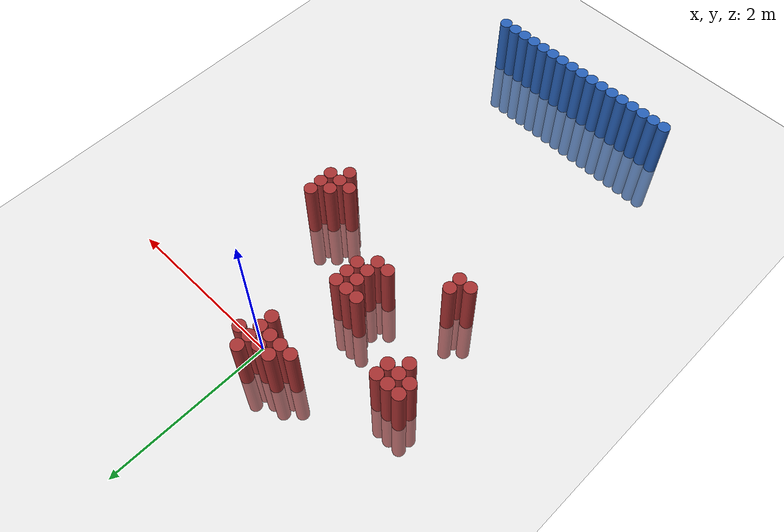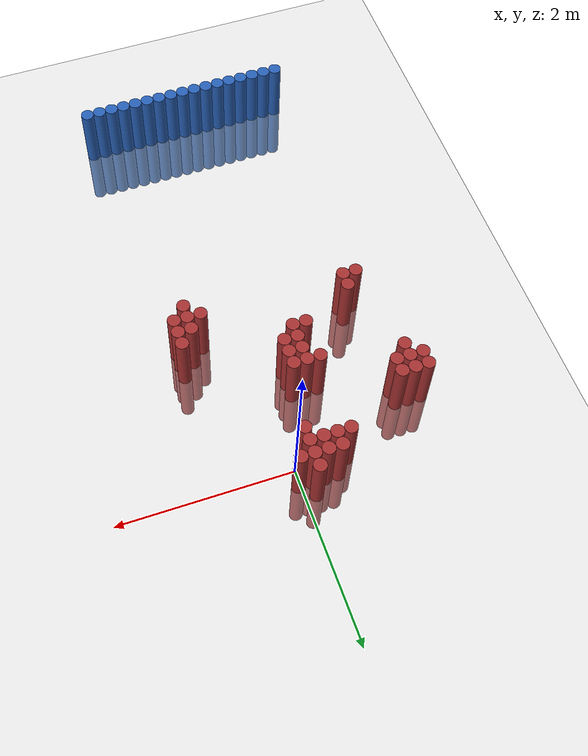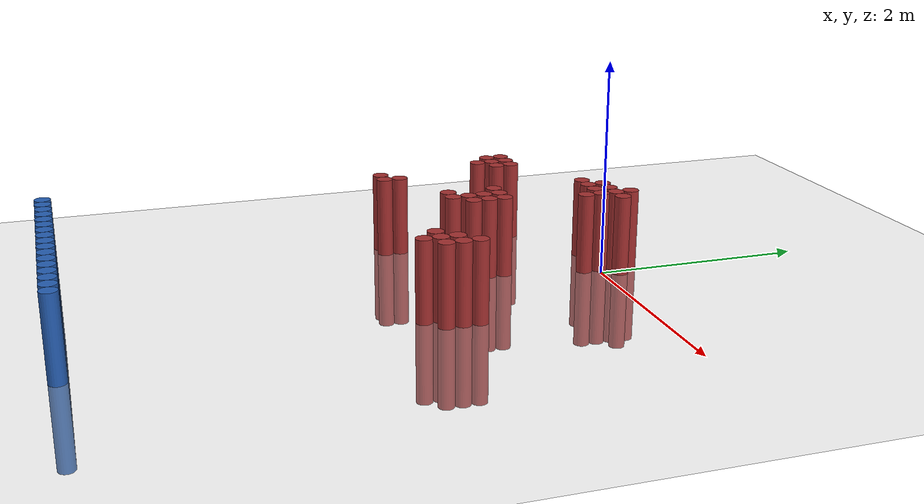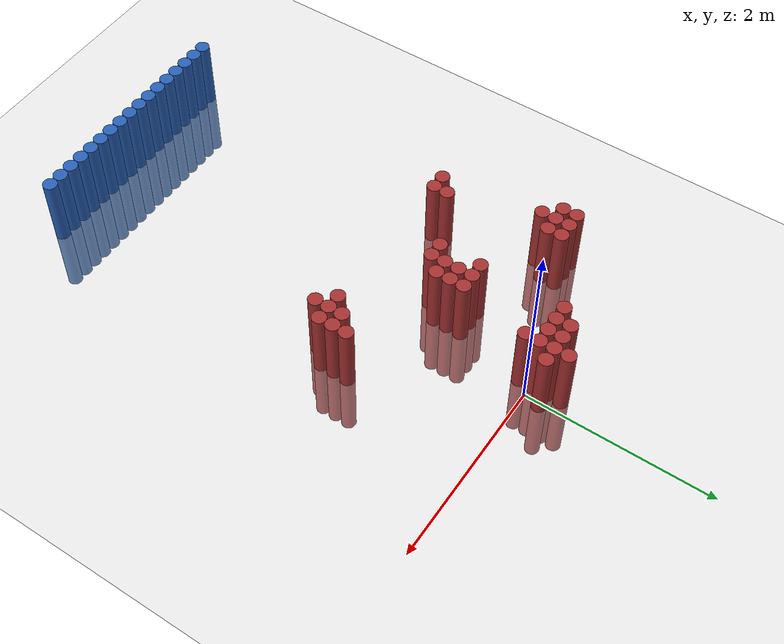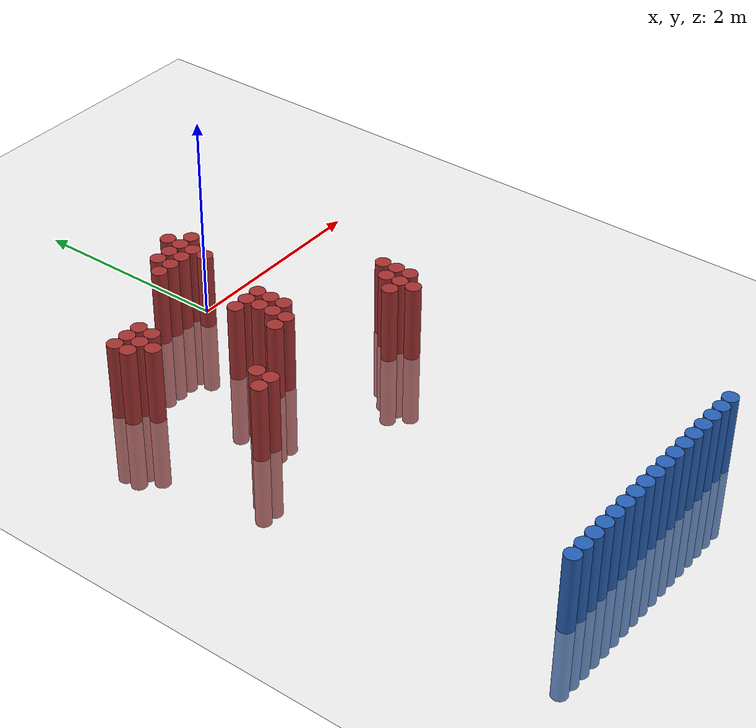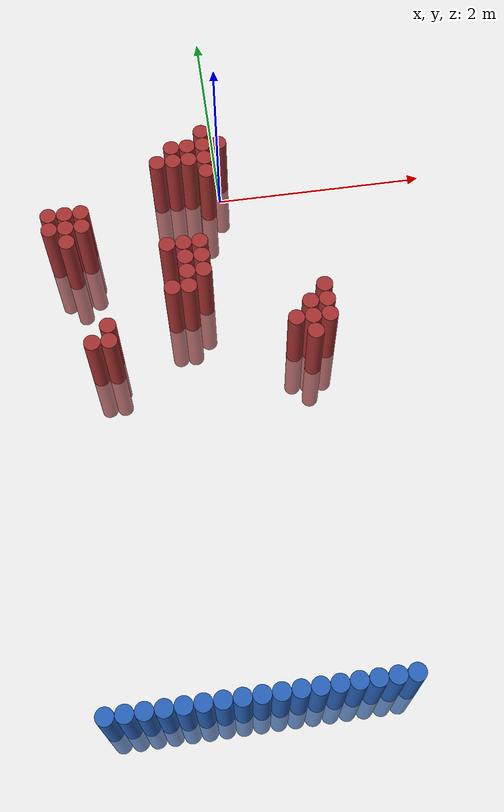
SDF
<sdf version="1.6">
 <world name="default">
  <model name="ground_plane">
   <static>1</static>
   <link name="link">
    <collision name="collision">
     <geometry><plane><normal>0 0 1</normal><size>100 100</size></plane></geometry>
     <surface><friction><ode><mu>100</mu><mu2>50</mu2></ode></friction></surface>
    </collision>
    <visual name="visual">
     <cast_shadows>0</cast_shadows>
     <geometry><plane><normal>0 0 1</normal><size>100 100</size></plane></geometry>
     <material>
      <script><uri>file://media/materials/scripts/gazebo.material</uri><name>Gazebo/Grey</name></script>
     </material>
    </visual>
   </link>
  </model>
  <model name="unit_cylinder_20">
   <static>1</static>
   <pose>0.925000 -4.925000 0.000000 0.000000 0.000000 0.000000</pose>
   <link name="link">
    <inertial>
     <mass>1</mass>
     <inertia><ixx>0.145833</ixx><ixy>0</ixy><ixz>0</ixz><iyy>0.145833</iyy><iyz>0</iyz><izz>0.125</izz></inertia>
    </inertial>
    <collision name="collision">
     <geometry><cylinder><radius>0.075000</radius><length>1.5</length></cylinder></geometry>
    </collision>
    <visual name="visual">
     <geometry><cylinder><radius>0.075000</radius><length>1.5</length></cylinder></geometry>
     <material>
      <ambient>0.152000 0.379000 0.720000 1</ambient>
      <diffuse>0.152000 0.379000 0.720000 1</diffuse>
     </material>
     <material>
      <script><name>Gazebo/Grey</name><uri>file://media/materials/scripts/gazebo.material</uri></script>
     </material>
    </visual>
   </link>
  </model>
  <model name="unit_cylinder_21">
   <static>1</static>
   <pose>0.775000 -4.925000 0.000000 0.000000 0.000000 0.000000</pose>
   <link name="link">
    <inertial>
     <mass>1</mass>
     <inertia><ixx>0.145833</ixx><ixy>0</ixy><ixz>0</ixz><iyy>0.145833</iyy><iyz>0</iyz><izz>0.125</izz></inertia>
    </inertial>
    <collision name="collision">
     <geometry><cylinder><radius>0.075000</radius><length>1.5</length></cylinder></geometry>
    </collision>
    <visual name="visual">
     <geometry><cylinder><radius>0.075000</radius><length>1.5</length></cylinder></geometry>
     <material>
      <ambient>0.152000 0.379000 0.720000 1</ambient>
      <diffuse>0.152000 0.379000 0.720000 1</diffuse>
     </material>
     <material>
      <script><name>Gazebo/Grey</name><uri>file://media/materials/scripts/gazebo.material</uri></script>
     </material>
    </visual>
   </link>
  </model>
  <model name="unit_cylinder_22">
   <static>1</static>
   <pose>0.625000 -4.925000 0.000000 0.000000 0.000000 0.000000</pose>
   <link name="link">
    <inertial>
     <mass>1</mass>
     <inertia><ixx>0.145833</ixx><ixy>0</ixy><ixz>0</ixz><iyy>0.145833</iyy><iyz>0</iyz><izz>0.125</izz></inertia>
    </inertial>
    <collision name="collision">
     <geometry><cylinder><radius>0.075000</radius><length>1.5</length></cylinder></geometry>
    </collision>
    <visual name="visual">
     <geometry><cylinder><radius>0.075000</radius><length>1.5</length></cylinder></geometry>
     <material>
      <ambient>0.152000 0.379000 0.720000 1</ambient>
      <diffuse>0.152000 0.379000 0.720000 1</diffuse>
     </material>
     <material>
      <script><name>Gazebo/Grey</name><uri>file://media/materials/scripts/gazebo.material</uri></script>
     </material>
    </visual>
   </link>
  </model>
  <model name="unit_cylinder_23">
   <static>1</static>
   <pose>0.475000 -4.925000 0.000000 0.000000 0.000000 0.000000</pose>
   <link name="link">
    <inertial>
     <mass>1</mass>
     <inertia><ixx>0.145833</ixx><ixy>0</ixy><ixz>0</ixz><iyy>0.145833</iyy><iyz>0</iyz><izz>0.125</izz></inertia>
    </inertial>
    <collision name="collision">
     <geometry><cylinder><radius>0.075000</radius><length>1.5</length></cylinder></geometry>
    </collision>
    <visual name="visual">
     <geometry><cylinder><radius>0.075000</radius><length>1.5</length></cylinder></geometry>
     <material>
      <ambient>0.152000 0.379000 0.720000 1</ambient>
      <diffuse>0.152000 0.379000 0.720000 1</diffuse>
     </material>
     <material>
      <script><name>Gazebo/Grey</name><uri>file://media/materials/scripts/gazebo.material</uri></script>
     </material>
    </visual>
   </link>
  </model>
  <model name="unit_cylinder_24">
   <static>1</static>
   <pose>0.325000 -4.925000 0.000000 0.000000 0.000000 0.000000</pose>
   <link name="link">
    <inertial>
     <mass>1</mass>
     <inertia><ixx>0.145833</ixx><ixy>0</ixy><ixz>0</ixz><iyy>0.145833</iyy><iyz>0</iyz><izz>0.125</izz></inertia>
    </inertial>
    <collision name="collision">
     <geometry><cylinder><radius>0.075000</radius><length>1.5</length></cylinder></geometry>
    </collision>
    <visual name="visual">
     <geometry><cylinder><radius>0.075000</radius><length>1.5</length></cylinder></geometry>
     <material>
      <ambient>0.152000 0.379000 0.720000 1</ambient>
      <diffuse>0.152000 0.379000 0.720000 1</diffuse>
     </material>
     <material>
      <script><name>Gazebo/Grey</name><uri>file://media/materials/scripts/gazebo.material</uri></script>
     </material>
    </visual>
   </link>
  </model>
  <model name="unit_cylinder_25">
   <static>1</static>
   <pose>0.175000 -4.925000 0.000000 0.000000 0.000000 0.000000</pose>
   <link name="link">
    <inertial>
     <mass>1</mass>
     <inertia><ixx>0.145833</ixx><ixy>0</ixy><ixz>0</ixz><iyy>0.145833</iyy><iyz>0</iyz><izz>0.125</izz></inertia>
    </inertial>
    <collision name="collision">
     <geometry><cylinder><radius>0.075000</radius><length>1.5</length></cylinder></geometry>
    </collision>
    <visual name="visual">
     <geometry><cylinder><radius>0.075000</radius><length>1.5</length></cylinder></geometry>
     <material>
      <ambient>0.152000 0.379000 0.720000 1</ambient>
      <diffuse>0.152000 0.379000 0.720000 1</diffuse>
     </material>
     <material>
      <script><name>Gazebo/Grey</name><uri>file://media/materials/scripts/gazebo.material</uri></script>
     </material>
    </visual>
   </link>
  </model>
  <model name="unit_cylinder_26">
   <static>1</static>
   <pose>0.025000 -4.925000 0.000000 0.000000 0.000000 0.000000</pose>
   <link name="link">
    <inertial>
     <mass>1</mass>
     <inertia><ixx>0.145833</ixx><ixy>0</ixy><ixz>0</ixz><iyy>0.145833</iyy><iyz>0</iyz><izz>0.125</izz></inertia>
    </inertial>
    <collision name="collision">
     <geometry><cylinder><radius>0.075000</radius><length>1.5</length></cylinder></geometry>
    </collision>
    <visual name="visual">
     <geometry><cylinder><radius>0.075000</radius><length>1.5</length></cylinder></geometry>
     <material>
      <ambient>0.152000 0.379000 0.720000 1</ambient>
      <diffuse>0.152000 0.379000 0.720000 1</diffuse>
     </material>
     <material>
      <script><name>Gazebo/Grey</name><uri>file://media/materials/scripts/gazebo.material</uri></script>
     </material>
    </visual>
   </link>
  </model>
  <model name="unit_cylinder_27">
   <static>1</static>
   <pose>-0.125000 -4.925000 0.000000 0.000000 0.000000 0.000000</pose>
   <link name="link">
    <inertial>
     <mass>1</mass>
     <inertia><ixx>0.145833</ixx><ixy>0</ixy><ixz>0</ixz><iyy>0.145833</iyy><iyz>0</iyz><izz>0.125</izz></inertia>
    </inertial>
    <collision name="collision">
     <geometry><cylinder><radius>0.075000</radius><length>1.5</length></cylinder></geometry>
    </collision>
    <visual name="visual">
     <geometry><cylinder><radius>0.075000</radius><length>1.5</length></cylinder></geometry>
     <material>
      <ambient>0.152000 0.379000 0.720000 1</ambient>
      <diffuse>0.152000 0.379000 0.720000 1</diffuse>
     </material>
     <material>
      <script><name>Gazebo/Grey</name><uri>file://media/materials/scripts/gazebo.material</uri></script>
     </material>
    </visual>
   </link>
  </model>
  <model name="unit_cylinder_28">
   <static>1</static>
   <pose>-0.275000 -4.925000 0.000000 0.000000 0.000000 0.000000</pose>
   <link name="link">
    <inertial>
     <mass>1</mass>
     <inertia><ixx>0.145833</ixx><ixy>0</ixy><ixz>0</ixz><iyy>0.145833</iyy><iyz>0</iyz><izz>0.125</izz></inertia>
    </inertial>
    <collision name="collision">
     <geometry><cylinder><radius>0.075000</radius><length>1.5</length></cylinder></geometry>
    </collision>
    <visual name="visual">
     <geometry><cylinder><radius>0.075000</radius><length>1.5</length></cylinder></geometry>
     <material>
      <ambient>0.152000 0.379000 0.720000 1</ambient>
      <diffuse>0.152000 0.379000 0.720000 1</diffuse>
     </material>
     <material>
      <script><name>Gazebo/Grey</name><uri>file://media/materials/scripts/gazebo.material</uri></script>
     </material>
    </visual>
   </link>
  </model>
  <model name="unit_cylinder_29">
   <static>1</static>
   <pose>-0.425000 -4.925000 0.000000 0.000000 0.000000 0.000000</pose>
   <link name="link">
    <inertial>
     <mass>1</mass>
     <inertia><ixx>0.145833</ixx><ixy>0</ixy><ixz>0</ixz><iyy>0.145833</iyy><iyz>0</iyz><izz>0.125</izz></inertia>
    </inertial>
    <collision name="collision">
     <geometry><cylinder><radius>0.075000</radius><length>1.5</length></cylinder></geometry>
    </collision>
    <visual name="visual">
     <geometry><cylinder><radius>0.075000</radius><length>1.5</length></cylinder></geometry>
     <material>
      <ambient>0.152000 0.379000 0.720000 1</ambient>
      <diffuse>0.152000 0.379000 0.720000 1</diffuse>
     </material>
     <material>
      <script><name>Gazebo/Grey</name><uri>file://media/materials/scripts/gazebo.material</uri></script>
     </material>
    </visual>
   </link>
  </model>
  <model name="unit_cylinder_30">
   <static>1</static>
   <pose>-0.575000 -4.925000 0.000000 0.000000 0.000000 0.000000</pose>
   <link name="link">
    <inertial>
     <mass>1</mass>
     <inertia><ixx>0.145833</ixx><ixy>0</ixy><ixz>0</ixz><iyy>0.145833</iyy><iyz>0</iyz><izz>0.125</izz></inertia>
    </inertial>
    <collision name="collision">
     <geometry><cylinder><radius>0.075000</radius><length>1.5</length></cylinder></geometry>
    </collision>
    <visual name="visual">
     <geometry><cylinder><radius>0.075000</radius><length>1.5</length></cylinder></geometry>
     <material>
      <ambient>0.152000 0.379000 0.720000 1</ambient>
      <diffuse>0.152000 0.379000 0.720000 1</diffuse>
     </material>
     <material>
      <script><name>Gazebo/Grey</name><uri>file://media/materials/scripts/gazebo.material</uri></script>
     </material>
    </visual>
   </link>
  </model>
  <model name="unit_cylinder_31">
   <static>1</static>
   <pose>-0.725000 -4.925000 0.000000 0.000000 0.000000 0.000000</pose>
   <link name="link">
    <inertial>
     <mass>1</mass>
     <inertia><ixx>0.145833</ixx><ixy>0</ixy><ixz>0</ixz><iyy>0.145833</iyy><iyz>0</iyz><izz>0.125</izz></inertia>
    </inertial>
    <collision name="collision">
     <geometry><cylinder><radius>0.075000</radius><length>1.5</length></cylinder></geometry>
    </collision>
    <visual name="visual">
     <geometry><cylinder><radius>0.075000</radius><length>1.5</length></cylinder></geometry>
     <material>
      <ambient>0.152000 0.379000 0.720000 1</ambient>
      <diffuse>0.152000 0.379000 0.720000 1</diffuse>
     </material>
     <material>
      <script><name>Gazebo/Grey</name><uri>file://media/materials/scripts/gazebo.material</uri></script>
     </material>
    </visual>
   </link>
  </model>
  <model name="unit_cylinder_32">
   <static>1</static>
   <pose>-0.875000 -4.925000 0.000000 0.000000 0.000000 0.000000</pose>
   <link name="link">
    <inertial>
     <mass>1</mass>
     <inertia><ixx>0.145833</ixx><ixy>0</ixy><ixz>0</ixz><iyy>0.145833</iyy><iyz>0</iyz><izz>0.125</izz></inertia>
    </inertial>
    <collision name="collision">
     <geometry><cylinder><radius>0.075000</radius><length>1.5</length></cylinder></geometry>
    </collision>
    <visual name="visual">
     <geometry><cylinder><radius>0.075000</radius><length>1.5</length></cylinder></geometry>
     <material>
      <ambient>0.152000 0.379000 0.720000 1</ambient>
      <diffuse>0.152000 0.379000 0.720000 1</diffuse>
     </material>
     <material>
      <script><name>Gazebo/Grey</name><uri>file://media/materials/scripts/gazebo.material</uri></script>
     </material>
    </visual>
   </link>
  </model>
  <model name="unit_cylinder_33">
   <static>1</static>
   <pose>-1.025000 -4.925000 0.000000 0.000000 0.000000 0.000000</pose>
   <link name="link">
    <inertial>
     <mass>1</mass>
     <inertia><ixx>0.145833</ixx><ixy>0</ixy><ixz>0</ixz><iyy>0.145833</iyy><iyz>0</iyz><izz>0.125</izz></inertia>
    </inertial>
    <collision name="collision">
     <geometry><cylinder><radius>0.075000</radius><length>1.5</length></cylinder></geometry>
    </collision>
    <visual name="visual">
     <geometry><cylinder><radius>0.075000</radius><length>1.5</length></cylinder></geometry>
     <material>
      <ambient>0.152000 0.379000 0.720000 1</ambient>
      <diffuse>0.152000 0.379000 0.720000 1</diffuse>
     </material>
     <material>
      <script><name>Gazebo/Grey</name><uri>file://media/materials/scripts/gazebo.material</uri></script>
     </material>
    </visual>
   </link>
  </model>
  <model name="unit_cylinder_34">
   <static>1</static>
   <pose>-1.175000 -4.925000 0.000000 0.000000 0.000000 0.000000</pose>
   <link name="link">
    <inertial>
     <mass>1</mass>
     <inertia><ixx>0.145833</ixx><ixy>0</ixy><ixz>0</ixz><iyy>0.145833</iyy><iyz>0</iyz><izz>0.125</izz></inertia>
    </inertial>
    <collision name="collision">
     <geometry><cylinder><radius>0.075000</radius><length>1.5</length></cylinder></geometry>
    </collision>
    <visual name="visual">
     <geometry><cylinder><radius>0.075000</radius><length>1.5</length></cylinder></geometry>
     <material>
      <ambient>0.152000 0.379000 0.720000 1</ambient>
      <diffuse>0.152000 0.379000 0.720000 1</diffuse>
     </material>
     <material>
      <script><name>Gazebo/Grey</name><uri>file://media/materials/scripts/gazebo.material</uri></script>
     </material>
    </visual>
   </link>
  </model>
  <model name="unit_cylinder_35">
   <static>1</static>
   <pose>-1.325000 -4.925000 0.000000 0.000000 0.000000 0.000000</pose>
   <link name="link">
    <inertial>
     <mass>1</mass>
     <inertia><ixx>0.145833</ixx><ixy>0</ixy><ixz>0</ixz><iyy>0.145833</iyy><iyz>0</iyz><izz>0.125</izz></inertia>
    </inertial>
    <collision name="collision">
     <geometry><cylinder><radius>0.075000</radius><length>1.5</length></cylinder></geometry>
    </collision>
    <visual name="visual">
     <geometry><cylinder><radius>0.075000</radius><length>1.5</length></cylinder></geometry>
     <material>
      <ambient>0.152000 0.379000 0.720000 1</ambient>
      <diffuse>0.152000 0.379000 0.720000 1</diffuse>
     </material>
     <material>
      <script><name>Gazebo/Grey</name><uri>file://media/materials/scripts/gazebo.material</uri></script>
     </material>
    </visual>
   </link>
  </model>
  <model name="unit_cylinder_36">
   <static>1</static>
   <pose>-1.475000 -4.925000 0.000000 0.000000 0.000000 0.000000</pose>
   <link name="link">
    <inertial>
     <mass>1</mass>
     <inertia><ixx>0.145833</ixx><ixy>0</ixy><ixz>0</ixz><iyy>0.145833</iyy><iyz>0</iyz><izz>0.125</izz></inertia>
    </inertial>
    <collision name="collision">
     <geometry><cylinder><radius>0.075000</radius><length>1.5</length></cylinder></geometry>
    </collision>
    <visual name="visual">
     <geometry><cylinder><radius>0.075000</radius><length>1.5</length></cylinder></geometry>
     <material>
      <ambient>0.152000 0.379000 0.720000 1</ambient>
      <diffuse>0.152000 0.379000 0.720000 1</diffuse>
     </material>
     <material>
      <script><name>Gazebo/Grey</name><uri>file://media/materials/scripts/gazebo.material</uri></script>
     </material>
    </visual>
   </link>
  </model>
  <model name="unit_cylinder_344">
   <static>1</static>
   <pose>-1.625000 -0.575000 0.000000 0.000000 0.000000 0.000000</pose>
   <link name="link">
    <inertial>
     <mass>1</mass>
     <inertia><ixx>0.145833</ixx><ixy>0</ixy><ixz>0</ixz><iyy>0.145833</iyy><iyz>0</iyz><izz>0.125</izz></inertia>
    </inertial>
    <collision name="collision">
     <geometry><cylinder><radius>0.075000</radius><length>1.5</length></cylinder></geometry>
    </collision>
    <visual name="visual">
     <geometry><cylinder><radius>0.075000</radius><length>1.5</length></cylinder></geometry>
     <material>
      <ambient>0.648000 0.192000 0.192000 1</ambient>
      <diffuse>0.648000 0.192000 0.192000 1</diffuse>
     </material>
     <material>
      <script><name>Gazebo/Grey</name><uri>file://media/materials/scripts/gazebo.material</uri></script>
     </material>
    </visual>
   </link>
  </model>
  <model name="unit_cylinder_345">
   <static>1</static>
   <pose>-1.625000 -0.425000 0.000000 0.000000 0.000000 0.000000</pose>
   <link name="link">
    <inertial>
     <mass>1</mass>
     <inertia><ixx>0.145833</ixx><ixy>0</ixy><ixz>0</ixz><iyy>0.145833</iyy><iyz>0</iyz><izz>0.125</izz></inertia>
    </inertial>
    <collision name="collision">
     <geometry><cylinder><radius>0.075000</radius><length>1.5</length></cylinder></geometry>
    </collision>
    <visual name="visual">
     <geometry><cylinder><radius>0.075000</radius><length>1.5</length></cylinder></geometry>
     <material>
      <ambient>0.648000 0.192000 0.192000 1</ambient>
      <diffuse>0.648000 0.192000 0.192000 1</diffuse>
     </material>
     <material>
      <script><name>Gazebo/Grey</name><uri>file://media/materials/scripts/gazebo.material</uri></script>
     </material>
    </visual>
   </link>
  </model>
  <model name="unit_cylinder_348">
   <static>1</static>
   <pose>-1.475000 -0.725000 0.000000 0.000000 0.000000 0.000000</pose>
   <link name="link">
    <inertial>
     <mass>1</mass>
     <inertia><ixx>0.145833</ixx><ixy>0</ixy><ixz>0</ixz><iyy>0.145833</iyy><iyz>0</iyz><izz>0.125</izz></inertia>
    </inertial>
    <collision name="collision">
     <geometry><cylinder><radius>0.075000</radius><length>1.5</length></cylinder></geometry>
    </collision>
    <visual name="visual">
     <geometry><cylinder><radius>0.075000</radius><length>1.5</length></cylinder></geometry>
     <material>
      <ambient>0.648000 0.192000 0.192000 1</ambient>
      <diffuse>0.648000 0.192000 0.192000 1</diffuse>
     </material>
     <material>
      <script><name>Gazebo/Grey</name><uri>file://media/materials/scripts/gazebo.material</uri></script>
     </material>
    </visual>
   </link>
  </model>
  <model name="unit_cylinder_349">
   <static>1</static>
   <pose>-1.475000 -0.575000 0.000000 0.000000 0.000000 0.000000</pose>
   <link name="link">
    <inertial>
     <mass>1</mass>
     <inertia><ixx>0.145833</ixx><ixy>0</ixy><ixz>0</ixz><iyy>0.145833</iyy><iyz>0</iyz><izz>0.125</izz></inertia>
    </inertial>
    <collision name="collision">
     <geometry><cylinder><radius>0.075000</radius><length>1.5</length></cylinder></geometry>
    </collision>
    <visual name="visual">
     <geometry><cylinder><radius>0.075000</radius><length>1.5</length></cylinder></geometry>
     <material>
      <ambient>0.648000 0.192000 0.192000 1</ambient>
      <diffuse>0.648000 0.192000 0.192000 1</diffuse>
     </material>
     <material>
      <script><name>Gazebo/Grey</name><uri>file://media/materials/scripts/gazebo.material</uri></script>
     </material>
    </visual>
   </link>
  </model>
  <model name="unit_cylinder_350">
   <static>1</static>
   <pose>-1.475000 -0.425000 0.000000 0.000000 0.000000 0.000000</pose>
   <link name="link">
    <inertial>
     <mass>1</mass>
     <inertia><ixx>0.145833</ixx><ixy>0</ixy><ixz>0</ixz><iyy>0.145833</iyy><iyz>0</iyz><izz>0.125</izz></inertia>
    </inertial>
    <collision name="collision">
     <geometry><cylinder><radius>0.075000</radius><length>1.5</length></cylinder></geometry>
    </collision>
    <visual name="visual">
     <geometry><cylinder><radius>0.075000</radius><length>1.5</length></cylinder></geometry>
     <material>
      <ambient>0.648000 0.192000 0.192000 1</ambient>
      <diffuse>0.648000 0.192000 0.192000 1</diffuse>
     </material>
     <material>
      <script><name>Gazebo/Grey</name><uri>file://media/materials/scripts/gazebo.material</uri></script>
     </material>
    </visual>
   </link>
  </model>
  <model name="unit_cylinder_354">
   <static>1</static>
   <pose>-1.325000 -1.775000 0.000000 0.000000 0.000000 0.000000</pose>
   <link name="link">
    <inertial>
     <mass>1</mass>
     <inertia><ixx>0.145833</ixx><ixy>0</ixy><ixz>0</ixz><iyy>0.145833</iyy><iyz>0</iyz><izz>0.125</izz></inertia>
    </inertial>
    <collision name="collision">
     <geometry><cylinder><radius>0.075000</radius><length>1.5</length></cylinder></geometry>
    </collision>
    <visual name="visual">
     <geometry><cylinder><radius>0.075000</radius><length>1.5</length></cylinder></geometry>
     <material>
      <ambient>0.648000 0.192000 0.192000 1</ambient>
      <diffuse>0.648000 0.192000 0.192000 1</diffuse>
     </material>
     <material>
      <script><name>Gazebo/Grey</name><uri>file://media/materials/scripts/gazebo.material</uri></script>
     </material>
    </visual>
   </link>
  </model>
  <model name="unit_cylinder_355">
   <static>1</static>
   <pose>-1.325000 -0.575000 0.000000 0.000000 0.000000 0.000000</pose>
   <link name="link">
    <inertial>
     <mass>1</mass>
     <inertia><ixx>0.145833</ixx><ixy>0</ixy><ixz>0</ixz><iyy>0.145833</iyy><iyz>0</iyz><izz>0.125</izz></inertia>
    </inertial>
    <collision name="collision">
     <geometry><cylinder><radius>0.075000</radius><length>1.5</length></cylinder></geometry>
    </collision>
    <visual name="visual">
     <geometry><cylinder><radius>0.075000</radius><length>1.5</length></cylinder></geometry>
     <material>
      <ambient>0.648000 0.192000 0.192000 1</ambient>
      <diffuse>0.648000 0.192000 0.192000 1</diffuse>
     </material>
     <material>
      <script><name>Gazebo/Grey</name><uri>file://media/materials/scripts/gazebo.material</uri></script>
     </material>
    </visual>
   </link>
  </model>
  <model name="unit_cylinder_356">
   <static>1</static>
   <pose>-1.325000 -0.425000 0.000000 0.000000 0.000000 0.000000</pose>
   <link name="link">
    <inertial>
     <mass>1</mass>
     <inertia><ixx>0.145833</ixx><ixy>0</ixy><ixz>0</ixz><iyy>0.145833</iyy><iyz>0</iyz><izz>0.125</izz></inertia>
    </inertial>
    <collision name="collision">
     <geometry><cylinder><radius>0.075000</radius><length>1.5</length></cylinder></geometry>
    </collision>
    <visual name="visual">
     <geometry><cylinder><radius>0.075000</radius><length>1.5</length></cylinder></geometry>
     <material>
      <ambient>0.648000 0.192000 0.192000 1</ambient>
      <diffuse>0.648000 0.192000 0.192000 1</diffuse>
     </material>
     <material>
      <script><name>Gazebo/Grey</name><uri>file://media/materials/scripts/gazebo.material</uri></script>
     </material>
    </visual>
   </link>
  </model>
  <model name="unit_cylinder_359">
   <static>1</static>
   <pose>-1.175000 -1.775000 0.000000 0.000000 0.000000 0.000000</pose>
   <link name="link">
    <inertial>
     <mass>1</mass>
     <inertia><ixx>0.145833</ixx><ixy>0</ixy><ixz>0</ixz><iyy>0.145833</iyy><iyz>0</iyz><izz>0.125</izz></inertia>
    </inertial>
    <collision name="collision">
     <geometry><cylinder><radius>0.075000</radius><length>1.5</length></cylinder></geometry>
    </collision>
    <visual name="visual">
     <geometry><cylinder><radius>0.075000</radius><length>1.5</length></cylinder></geometry>
     <material>
      <ambient>0.648000 0.192000 0.192000 1</ambient>
      <diffuse>0.648000 0.192000 0.192000 1</diffuse>
     </material>
     <material>
      <script><name>Gazebo/Grey</name><uri>file://media/materials/scripts/gazebo.material</uri></script>
     </material>
    </visual>
   </link>
  </model>
  <model name="unit_cylinder_360">
   <static>1</static>
   <pose>-1.175000 -1.625000 0.000000 0.000000 0.000000 0.000000</pose>
   <link name="link">
    <inertial>
     <mass>1</mass>
     <inertia><ixx>0.145833</ixx><ixy>0</ixy><ixz>0</ixz><iyy>0.145833</iyy><iyz>0</iyz><izz>0.125</izz></inertia>
    </inertial>
    <collision name="collision">
     <geometry><cylinder><radius>0.075000</radius><length>1.5</length></cylinder></geometry>
    </collision>
    <visual name="visual">
     <geometry><cylinder><radius>0.075000</radius><length>1.5</length></cylinder></geometry>
     <material>
      <ambient>0.648000 0.192000 0.192000 1</ambient>
      <diffuse>0.648000 0.192000 0.192000 1</diffuse>
     </material>
     <material>
      <script><name>Gazebo/Grey</name><uri>file://media/materials/scripts/gazebo.material</uri></script>
     </material>
    </visual>
   </link>
  </model>
  <model name="unit_cylinder_366">
   <static>1</static>
   <pose>-0.575000 -1.325000 0.000000 0.000000 0.000000 0.000000</pose>
   <link name="link">
    <inertial>
     <mass>1</mass>
     <inertia><ixx>0.145833</ixx><ixy>0</ixy><ixz>0</ixz><iyy>0.145833</iyy><iyz>0</iyz><izz>0.125</izz></inertia>
    </inertial>
    <collision name="collision">
     <geometry><cylinder><radius>0.075000</radius><length>1.5</length></cylinder></geometry>
    </collision>
    <visual name="visual">
     <geometry><cylinder><radius>0.075000</radius><length>1.5</length></cylinder></geometry>
     <material>
      <ambient>0.648000 0.192000 0.192000 1</ambient>
      <diffuse>0.648000 0.192000 0.192000 1</diffuse>
     </material>
     <material>
      <script><name>Gazebo/Grey</name><uri>file://media/materials/scripts/gazebo.material</uri></script>
     </material>
    </visual>
   </link>
  </model>
  <model name="unit_cylinder_367">
   <static>1</static>
   <pose>-0.575000 -0.875000 0.000000 0.000000 0.000000 0.000000</pose>
   <link name="link">
    <inertial>
     <mass>1</mass>
     <inertia><ixx>0.145833</ixx><ixy>0</ixy><ixz>0</ixz><iyy>0.145833</iyy><iyz>0</iyz><izz>0.125</izz></inertia>
    </inertial>
    <collision name="collision">
     <geometry><cylinder><radius>0.075000</radius><length>1.5</length></cylinder></geometry>
    </collision>
    <visual name="visual">
     <geometry><cylinder><radius>0.075000</radius><length>1.5</length></cylinder></geometry>
     <material>
      <ambient>0.648000 0.192000 0.192000 1</ambient>
      <diffuse>0.648000 0.192000 0.192000 1</diffuse>
     </material>
     <material>
      <script><name>Gazebo/Grey</name><uri>file://media/materials/scripts/gazebo.material</uri></script>
     </material>
    </visual>
   </link>
  </model>
  <model name="unit_cylinder_368">
   <static>1</static>
   <pose>-0.575000 0.025000 0.000000 0.000000 0.000000 0.000000</pose>
   <link name="link">
    <inertial>
     <mass>1</mass>
     <inertia><ixx>0.145833</ixx><ixy>0</ixy><ixz>0</ixz><iyy>0.145833</iyy><iyz>0</iyz><izz>0.125</izz></inertia>
    </inertial>
    <collision name="collision">
     <geometry><cylinder><radius>0.075000</radius><length>1.5</length></cylinder></geometry>
    </collision>
    <visual name="visual">
     <geometry><cylinder><radius>0.075000</radius><length>1.5</length></cylinder></geometry>
     <material>
      <ambient>0.648000 0.192000 0.192000 1</ambient>
      <diffuse>0.648000 0.192000 0.192000 1</diffuse>
     </material>
     <material>
      <script><name>Gazebo/Grey</name><uri>file://media/materials/scripts/gazebo.material</uri></script>
     </material>
    </visual>
   </link>
  </model>
  <model name="unit_cylinder_372">
   <static>1</static>
   <pose>-0.425000 -1.325000 0.000000 0.000000 0.000000 0.000000</pose>
   <link name="link">
    <inertial>
     <mass>1</mass>
     <inertia><ixx>0.145833</ixx><ixy>0</ixy><ixz>0</ixz><iyy>0.145833</iyy><iyz>0</iyz><izz>0.125</izz></inertia>
    </inertial>
    <collision name="collision">
     <geometry><cylinder><radius>0.075000</radius><length>1.5</length></cylinder></geometry>
    </collision>
    <visual name="visual">
     <geometry><cylinder><radius>0.075000</radius><length>1.5</length></cylinder></geometry>
     <material>
      <ambient>0.648000 0.192000 0.192000 1</ambient>
      <diffuse>0.648000 0.192000 0.192000 1</diffuse>
     </material>
     <material>
      <script><name>Gazebo/Grey</name><uri>file://media/materials/scripts/gazebo.material</uri></script>
     </material>
    </visual>
   </link>
  </model>
  <model name="unit_cylinder_373">
   <static>1</static>
   <pose>-0.425000 -1.175000 0.000000 0.000000 0.000000 0.000000</pose>
   <link name="link">
    <inertial>
     <mass>1</mass>
     <inertia><ixx>0.145833</ixx><ixy>0</ixy><ixz>0</ixz><iyy>0.145833</iyy><iyz>0</iyz><izz>0.125</izz></inertia>
    </inertial>
    <collision name="collision">
     <geometry><cylinder><radius>0.075000</radius><length>1.5</length></cylinder></geometry>
    </collision>
    <visual name="visual">
     <geometry><cylinder><radius>0.075000</radius><length>1.5</length></cylinder></geometry>
     <material>
      <ambient>0.648000 0.192000 0.192000 1</ambient>
      <diffuse>0.648000 0.192000 0.192000 1</diffuse>
     </material>
     <material>
      <script><name>Gazebo/Grey</name><uri>file://media/materials/scripts/gazebo.material</uri></script>
     </material>
    </visual>
   </link>
  </model>
  <model name="unit_cylinder_374">
   <static>1</static>
   <pose>-0.425000 -1.025000 0.000000 0.000000 0.000000 0.000000</pose>
   <link name="link">
    <inertial>
     <mass>1</mass>
     <inertia><ixx>0.145833</ixx><ixy>0</ixy><ixz>0</ixz><iyy>0.145833</iyy><iyz>0</iyz><izz>0.125</izz></inertia>
    </inertial>
    <collision name="collision">
     <geometry><cylinder><radius>0.075000</radius><length>1.5</length></cylinder></geometry>
    </collision>
    <visual name="visual">
     <geometry><cylinder><radius>0.075000</radius><length>1.5</length></cylinder></geometry>
     <material>
      <ambient>0.648000 0.192000 0.192000 1</ambient>
      <diffuse>0.648000 0.192000 0.192000 1</diffuse>
     </material>
     <material>
      <script><name>Gazebo/Grey</name><uri>file://media/materials/scripts/gazebo.material</uri></script>
     </material>
    </visual>
   </link>
  </model>
  <model name="unit_cylinder_375">
   <static>1</static>
   <pose>-0.425000 -0.875000 0.000000 0.000000 0.000000 0.000000</pose>
   <link name="link">
    <inertial>
     <mass>1</mass>
     <inertia><ixx>0.145833</ixx><ixy>0</ixy><ixz>0</ixz><iyy>0.145833</iyy><iyz>0</iyz><izz>0.125</izz></inertia>
    </inertial>
    <collision name="collision">
     <geometry><cylinder><radius>0.075000</radius><length>1.5</length></cylinder></geometry>
    </collision>
    <visual name="visual">
     <geometry><cylinder><radius>0.075000</radius><length>1.5</length></cylinder></geometry>
     <material>
      <ambient>0.648000 0.192000 0.192000 1</ambient>
      <diffuse>0.648000 0.192000 0.192000 1</diffuse>
     </material>
     <material>
      <script><name>Gazebo/Grey</name><uri>file://media/materials/scripts/gazebo.material</uri></script>
     </material>
    </visual>
   </link>
  </model>
  <model name="unit_cylinder_376">
   <static>1</static>
   <pose>-0.425000 0.025000 0.000000 0.000000 0.000000 0.000000</pose>
   <link name="link">
    <inertial>
     <mass>1</mass>
     <inertia><ixx>0.145833</ixx><ixy>0</ixy><ixz>0</ixz><iyy>0.145833</iyy><iyz>0</iyz><izz>0.125</izz></inertia>
    </inertial>
    <collision name="collision">
     <geometry><cylinder><radius>0.075000</radius><length>1.5</length></cylinder></geometry>
    </collision>
    <visual name="visual">
     <geometry><cylinder><radius>0.075000</radius><length>1.5</length></cylinder></geometry>
     <material>
      <ambient>0.648000 0.192000 0.192000 1</ambient>
      <diffuse>0.648000 0.192000 0.192000 1</diffuse>
     </material>
     <material>
      <script><name>Gazebo/Grey</name><uri>file://media/materials/scripts/gazebo.material</uri></script>
     </material>
    </visual>
   </link>
  </model>
  <model name="unit_cylinder_377">
   <static>1</static>
   <pose>-0.425000 0.175000 0.000000 0.000000 0.000000 0.000000</pose>
   <link name="link">
    <inertial>
     <mass>1</mass>
     <inertia><ixx>0.145833</ixx><ixy>0</ixy><ixz>0</ixz><iyy>0.145833</iyy><iyz>0</iyz><izz>0.125</izz></inertia>
    </inertial>
    <collision name="collision">
     <geometry><cylinder><radius>0.075000</radius><length>1.5</length></cylinder></geometry>
    </collision>
    <visual name="visual">
     <geometry><cylinder><radius>0.075000</radius><length>1.5</length></cylinder></geometry>
     <material>
      <ambient>0.648000 0.192000 0.192000 1</ambient>
      <diffuse>0.648000 0.192000 0.192000 1</diffuse>
     </material>
     <material>
      <script><name>Gazebo/Grey</name><uri>file://media/materials/scripts/gazebo.material</uri></script>
     </material>
    </visual>
   </link>
  </model>
  <model name="unit_cylinder_381">
   <static>1</static>
   <pose>-0.275000 -1.175000 0.000000 0.000000 0.000000 0.000000</pose>
   <link name="link">
    <inertial>
     <mass>1</mass>
     <inertia><ixx>0.145833</ixx><ixy>0</ixy><ixz>0</ixz><iyy>0.145833</iyy><iyz>0</iyz><izz>0.125</izz></inertia>
    </inertial>
    <collision name="collision">
     <geometry><cylinder><radius>0.075000</radius><length>1.5</length></cylinder></geometry>
    </collision>
    <visual name="visual">
     <geometry><cylinder><radius>0.075000</radius><length>1.5</length></cylinder></geometry>
     <material>
      <ambient>0.648000 0.192000 0.192000 1</ambient>
      <diffuse>0.648000 0.192000 0.192000 1</diffuse>
     </material>
     <material>
      <script><name>Gazebo/Grey</name><uri>file://media/materials/scripts/gazebo.material</uri></script>
     </material>
    </visual>
   </link>
  </model>
  <model name="unit_cylinder_382">
   <static>1</static>
   <pose>-0.275000 -1.025000 0.000000 0.000000 0.000000 0.000000</pose>
   <link name="link">
    <inertial>
     <mass>1</mass>
     <inertia><ixx>0.145833</ixx><ixy>0</ixy><ixz>0</ixz><iyy>0.145833</iyy><iyz>0</iyz><izz>0.125</izz></inertia>
    </inertial>
    <collision name="collision">
     <geometry><cylinder><radius>0.075000</radius><length>1.5</length></cylinder></geometry>
    </collision>
    <visual name="visual">
     <geometry><cylinder><radius>0.075000</radius><length>1.5</length></cylinder></geometry>
     <material>
      <ambient>0.648000 0.192000 0.192000 1</ambient>
      <diffuse>0.648000 0.192000 0.192000 1</diffuse>
     </material>
     <material>
      <script><name>Gazebo/Grey</name><uri>file://media/materials/scripts/gazebo.material</uri></script>
     </material>
    </visual>
   </link>
  </model>
  <model name="unit_cylinder_383">
   <static>1</static>
   <pose>-0.275000 -0.875000 0.000000 0.000000 0.000000 0.000000</pose>
   <link name="link">
    <inertial>
     <mass>1</mass>
     <inertia><ixx>0.145833</ixx><ixy>0</ixy><ixz>0</ixz><iyy>0.145833</iyy><iyz>0</iyz><izz>0.125</izz></inertia>
    </inertial>
    <collision name="collision">
     <geometry><cylinder><radius>0.075000</radius><length>1.5</length></cylinder></geometry>
    </collision>
    <visual name="visual">
     <geometry><cylinder><radius>0.075000</radius><length>1.5</length></cylinder></geometry>
     <material>
      <ambient>0.648000 0.192000 0.192000 1</ambient>
      <diffuse>0.648000 0.192000 0.192000 1</diffuse>
     </material>
     <material>
      <script><name>Gazebo/Grey</name><uri>file://media/materials/scripts/gazebo.material</uri></script>
     </material>
    </visual>
   </link>
  </model>
  <model name="unit_cylinder_384">
   <static>1</static>
   <pose>-0.275000 0.025000 0.000000 0.000000 0.000000 0.000000</pose>
   <link name="link">
    <inertial>
     <mass>1</mass>
     <inertia><ixx>0.145833</ixx><ixy>0</ixy><ixz>0</ixz><iyy>0.145833</iyy><iyz>0</iyz><izz>0.125</izz></inertia>
    </inertial>
    <collision name="collision">
     <geometry><cylinder><radius>0.075000</radius><length>1.5</length></cylinder></geometry>
    </collision>
    <visual name="visual">
     <geometry><cylinder><radius>0.075000</radius><length>1.5</length></cylinder></geometry>
     <material>
      <ambient>0.648000 0.192000 0.192000 1</ambient>
      <diffuse>0.648000 0.192000 0.192000 1</diffuse>
     </material>
     <material>
      <script><name>Gazebo/Grey</name><uri>file://media/materials/scripts/gazebo.material</uri></script>
     </material>
    </visual>
   </link>
  </model>
  <model name="unit_cylinder_385">
   <static>1</static>
   <pose>-0.275000 0.175000 0.000000 0.000000 0.000000 0.000000</pose>
   <link name="link">
    <inertial>
     <mass>1</mass>
     <inertia><ixx>0.145833</ixx><ixy>0</ixy><ixz>0</ixz><iyy>0.145833</iyy><iyz>0</iyz><izz>0.125</izz></inertia>
    </inertial>
    <collision name="collision">
     <geometry><cylinder><radius>0.075000</radius><length>1.5</length></cylinder></geometry>
    </collision>
    <visual name="visual">
     <geometry><cylinder><radius>0.075000</radius><length>1.5</length></cylinder></geometry>
     <material>
      <ambient>0.648000 0.192000 0.192000 1</ambient>
      <diffuse>0.648000 0.192000 0.192000 1</diffuse>
     </material>
     <material>
      <script><name>Gazebo/Grey</name><uri>file://media/materials/scripts/gazebo.material</uri></script>
     </material>
    </visual>
   </link>
  </model>
  <model name="unit_cylinder_390">
   <static>1</static>
   <pose>-0.125000 -0.125000 0.000000 0.000000 0.000000 0.000000</pose>
   <link name="link">
    <inertial>
     <mass>1</mass>
     <inertia><ixx>0.145833</ixx><ixy>0</ixy><ixz>0</ixz><iyy>0.145833</iyy><iyz>0</iyz><izz>0.125</izz></inertia>
    </inertial>
    <collision name="collision">
     <geometry><cylinder><radius>0.075000</radius><length>1.5</length></cylinder></geometry>
    </collision>
    <visual name="visual">
     <geometry><cylinder><radius>0.075000</radius><length>1.5</length></cylinder></geometry>
     <material>
      <ambient>0.648000 0.192000 0.192000 1</ambient>
      <diffuse>0.648000 0.192000 0.192000 1</diffuse>
     </material>
     <material>
      <script><name>Gazebo/Grey</name><uri>file://media/materials/scripts/gazebo.material</uri></script>
     </material>
    </visual>
   </link>
  </model>
  <model name="unit_cylinder_391">
   <static>1</static>
   <pose>-0.125000 0.025000 0.000000 0.000000 0.000000 0.000000</pose>
   <link name="link">
    <inertial>
     <mass>1</mass>
     <inertia><ixx>0.145833</ixx><ixy>0</ixy><ixz>0</ixz><iyy>0.145833</iyy><iyz>0</iyz><izz>0.125</izz></inertia>
    </inertial>
    <collision name="collision">
     <geometry><cylinder><radius>0.075000</radius><length>1.5</length></cylinder></geometry>
    </collision>
    <visual name="visual">
     <geometry><cylinder><radius>0.075000</radius><length>1.5</length></cylinder></geometry>
     <material>
      <ambient>0.648000 0.192000 0.192000 1</ambient>
      <diffuse>0.648000 0.192000 0.192000 1</diffuse>
     </material>
     <material>
      <script><name>Gazebo/Grey</name><uri>file://media/materials/scripts/gazebo.material</uri></script>
     </material>
    </visual>
   </link>
  </model>
  <model name="unit_cylinder_392">
   <static>1</static>
   <pose>-0.125000 0.175000 0.000000 0.000000 0.000000 0.000000</pose>
   <link name="link">
    <inertial>
     <mass>1</mass>
     <inertia><ixx>0.145833</ixx><ixy>0</ixy><ixz>0</ixz><iyy>0.145833</iyy><iyz>0</iyz><izz>0.125</izz></inertia>
    </inertial>
    <collision name="collision">
     <geometry><cylinder><radius>0.075000</radius><length>1.5</length></cylinder></geometry>
    </collision>
    <visual name="visual">
     <geometry><cylinder><radius>0.075000</radius><length>1.5</length></cylinder></geometry>
     <material>
      <ambient>0.648000 0.192000 0.192000 1</ambient>
      <diffuse>0.648000 0.192000 0.192000 1</diffuse>
     </material>
     <material>
      <script><name>Gazebo/Grey</name><uri>file://media/materials/scripts/gazebo.material</uri></script>
     </material>
    </visual>
   </link>
  </model>
  <model name="unit_cylinder_393">
   <static>1</static>
   <pose>-0.125000 0.325000 0.000000 0.000000 0.000000 0.000000</pose>
   <link name="link">
    <inertial>
     <mass>1</mass>
     <inertia><ixx>0.145833</ixx><ixy>0</ixy><ixz>0</ixz><iyy>0.145833</iyy><iyz>0</iyz><izz>0.125</izz></inertia>
    </inertial>
    <collision name="collision">
     <geometry><cylinder><radius>0.075000</radius><length>1.5</length></cylinder></geometry>
    </collision>
    <visual name="visual">
     <geometry><cylinder><radius>0.075000</radius><length>1.5</length></cylinder></geometry>
     <material>
      <ambient>0.648000 0.192000 0.192000 1</ambient>
      <diffuse>0.648000 0.192000 0.192000 1</diffuse>
     </material>
     <material>
      <script><name>Gazebo/Grey</name><uri>file://media/materials/scripts/gazebo.material</uri></script>
     </material>
    </visual>
   </link>
  </model>
  <model name="unit_cylinder_398">
   <static>1</static>
   <pose>0.025000 0.175000 0.000000 0.000000 0.000000 0.000000</pose>
   <link name="link">
    <inertial>
     <mass>1</mass>
     <inertia><ixx>0.145833</ixx><ixy>0</ixy><ixz>0</ixz><iyy>0.145833</iyy><iyz>0</iyz><izz>0.125</izz></inertia>
    </inertial>
    <collision name="collision">
     <geometry><cylinder><radius>0.075000</radius><length>1.5</length></cylinder></geometry>
    </collision>
    <visual name="visual">
     <geometry><cylinder><radius>0.075000</radius><length>1.5</length></cylinder></geometry>
     <material>
      <ambient>0.648000 0.192000 0.192000 1</ambient>
      <diffuse>0.648000 0.192000 0.192000 1</diffuse>
     </material>
     <material>
      <script><name>Gazebo/Grey</name><uri>file://media/materials/scripts/gazebo.material</uri></script>
     </material>
    </visual>
   </link>
  </model>
  <model name="unit_cylinder_403">
   <static>1</static>
   <pose>0.475000 -1.775000 0.000000 0.000000 0.000000 0.000000</pose>
   <link name="link">
    <inertial>
     <mass>1</mass>
     <inertia><ixx>0.145833</ixx><ixy>0</ixy><ixz>0</ixz><iyy>0.145833</iyy><iyz>0</iyz><izz>0.125</izz></inertia>
    </inertial>
    <collision name="collision">
     <geometry><cylinder><radius>0.075000</radius><length>1.5</length></cylinder></geometry>
    </collision>
    <visual name="visual">
     <geometry><cylinder><radius>0.075000</radius><length>1.5</length></cylinder></geometry>
     <material>
      <ambient>0.648000 0.192000 0.192000 1</ambient>
      <diffuse>0.648000 0.192000 0.192000 1</diffuse>
     </material>
     <material>
      <script><name>Gazebo/Grey</name><uri>file://media/materials/scripts/gazebo.material</uri></script>
     </material>
    </visual>
   </link>
  </model>
  <model name="unit_cylinder_410">
   <static>1</static>
   <pose>0.625000 -1.925000 0.000000 0.000000 0.000000 0.000000</pose>
   <link name="link">
    <inertial>
     <mass>1</mass>
     <inertia><ixx>0.145833</ixx><ixy>0</ixy><ixz>0</ixz><iyy>0.145833</iyy><iyz>0</iyz><izz>0.125</izz></inertia>
    </inertial>
    <collision name="collision">
     <geometry><cylinder><radius>0.075000</radius><length>1.5</length></cylinder></geometry>
    </collision>
    <visual name="visual">
     <geometry><cylinder><radius>0.075000</radius><length>1.5</length></cylinder></geometry>
     <material>
      <ambient>0.648000 0.192000 0.192000 1</ambient>
      <diffuse>0.648000 0.192000 0.192000 1</diffuse>
     </material>
     <material>
      <script><name>Gazebo/Grey</name><uri>file://media/materials/scripts/gazebo.material</uri></script>
     </material>
    </visual>
   </link>
  </model>
  <model name="unit_cylinder_411">
   <static>1</static>
   <pose>0.625000 -1.775000 0.000000 0.000000 0.000000 0.000000</pose>
   <link name="link">
    <inertial>
     <mass>1</mass>
     <inertia><ixx>0.145833</ixx><ixy>0</ixy><ixz>0</ixz><iyy>0.145833</iyy><iyz>0</iyz><izz>0.125</izz></inertia>
    </inertial>
    <collision name="collision">
     <geometry><cylinder><radius>0.075000</radius><length>1.5</length></cylinder></geometry>
    </collision>
    <visual name="visual">
     <geometry><cylinder><radius>0.075000</radius><length>1.5</length></cylinder></geometry>
     <material>
      <ambient>0.648000 0.192000 0.192000 1</ambient>
      <diffuse>0.648000 0.192000 0.192000 1</diffuse>
     </material>
     <material>
      <script><name>Gazebo/Grey</name><uri>file://media/materials/scripts/gazebo.material</uri></script>
     </material>
    </visual>
   </link>
  </model>
  <model name="unit_cylinder_412">
   <static>1</static>
   <pose>0.625000 -1.625000 0.000000 0.000000 0.000000 0.000000</pose>
   <link name="link">
    <inertial>
     <mass>1</mass>
     <inertia><ixx>0.145833</ixx><ixy>0</ixy><ixz>0</ixz><iyy>0.145833</iyy><iyz>0</iyz><izz>0.125</izz></inertia>
    </inertial>
    <collision name="collision">
     <geometry><cylinder><radius>0.075000</radius><length>1.5</length></cylinder></geometry>
    </collision>
    <visual name="visual">
     <geometry><cylinder><radius>0.075000</radius><length>1.5</length></cylinder></geometry>
     <material>
      <ambient>0.648000 0.192000 0.192000 1</ambient>
      <diffuse>0.648000 0.192000 0.192000 1</diffuse>
     </material>
     <material>
      <script><name>Gazebo/Grey</name><uri>file://media/materials/scripts/gazebo.material</uri></script>
     </material>
    </visual>
   </link>
  </model>
  <model name="unit_cylinder_418">
   <static>1</static>
   <pose>0.775000 -1.775000 0.000000 0.000000 0.000000 0.000000</pose>
   <link name="link">
    <inertial>
     <mass>1</mass>
     <inertia><ixx>0.145833</ixx><ixy>0</ixy><ixz>0</ixz><iyy>0.145833</iyy><iyz>0</iyz><izz>0.125</izz></inertia>
    </inertial>
    <collision name="collision">
     <geometry><cylinder><radius>0.075000</radius><length>1.5</length></cylinder></geometry>
    </collision>
    <visual name="visual">
     <geometry><cylinder><radius>0.075000</radius><length>1.5</length></cylinder></geometry>
     <material>
      <ambient>0.648000 0.192000 0.192000 1</ambient>
      <diffuse>0.648000 0.192000 0.192000 1</diffuse>
     </material>
     <material>
      <script><name>Gazebo/Grey</name><uri>file://media/materials/scripts/gazebo.material</uri></script>
     </material>
    </visual>
   </link>
  </model>
  <model name="unit_cylinder_419">
   <static>1</static>
   <pose>0.775000 -1.625000 0.000000 0.000000 0.000000 0.000000</pose>
   <link name="link">
    <inertial>
     <mass>1</mass>
     <inertia><ixx>0.145833</ixx><ixy>0</ixy><ixz>0</ixz><iyy>0.145833</iyy><iyz>0</iyz><izz>0.125</izz></inertia>
    </inertial>
    <collision name="collision">
     <geometry><cylinder><radius>0.075000</radius><length>1.5</length></cylinder></geometry>
    </collision>
    <visual name="visual">
     <geometry><cylinder><radius>0.075000</radius><length>1.5</length></cylinder></geometry>
     <material>
      <ambient>0.648000 0.192000 0.192000 1</ambient>
      <diffuse>0.648000 0.192000 0.192000 1</diffuse>
     </material>
     <material>
      <script><name>Gazebo/Grey</name><uri>file://media/materials/scripts/gazebo.material</uri></script>
     </material>
    </visual>
   </link>
  </model>
  <model name="unit_cylinder_420">
   <static>1</static>
   <pose>0.775000 -1.475000 0.000000 0.000000 0.000000 0.000000</pose>
   <link name="link">
    <inertial>
     <mass>1</mass>
     <inertia><ixx>0.145833</ixx><ixy>0</ixy><ixz>0</ixz><iyy>0.145833</iyy><iyz>0</iyz><izz>0.125</izz></inertia>
    </inertial>
    <collision name="collision">
     <geometry><cylinder><radius>0.075000</radius><length>1.5</length></cylinder></geometry>
    </collision>
    <visual name="visual">
     <geometry><cylinder><radius>0.075000</radius><length>1.5</length></cylinder></geometry>
     <material>
      <ambient>0.648000 0.192000 0.192000 1</ambient>
      <diffuse>0.648000 0.192000 0.192000 1</diffuse>
     </material>
     <material>
      <script><name>Gazebo/Grey</name><uri>file://media/materials/scripts/gazebo.material</uri></script>
     </material>
    </visual>
   </link>
  </model>
 </world>
</sdf>
